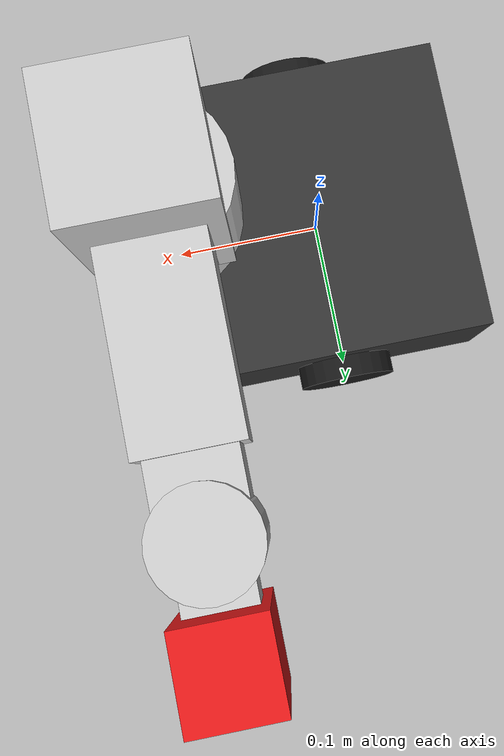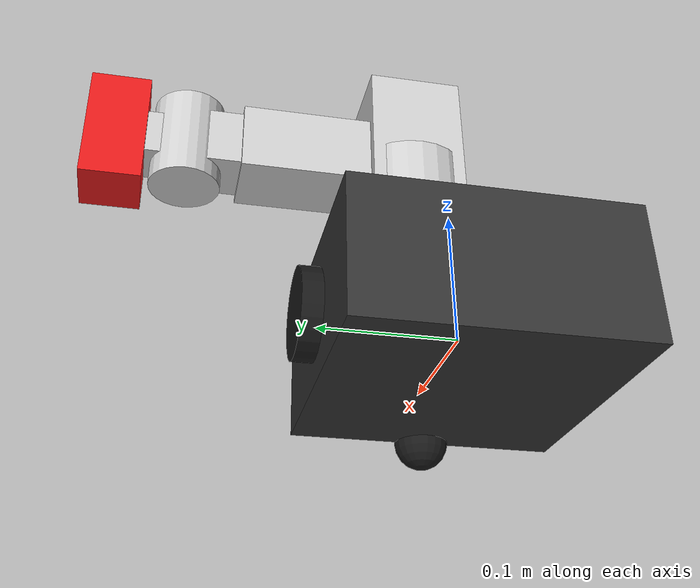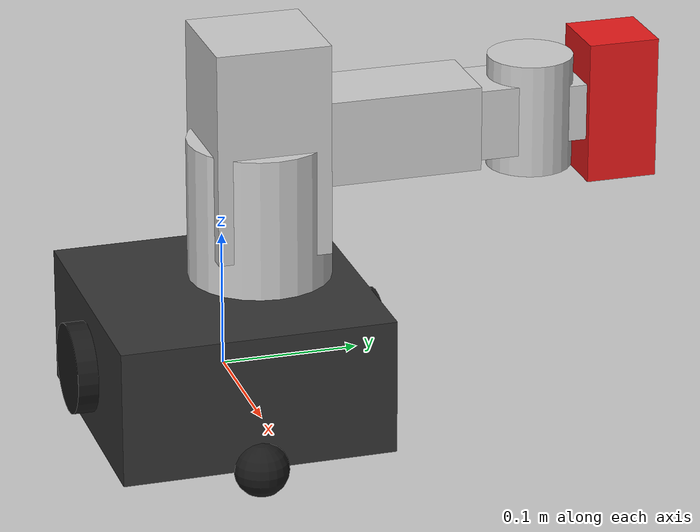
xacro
<?xml version="1.0"?>
<robot xmlns:xacro="http://www.ros.org/wiki/xacro" name="turtlebot_arm">

  <!-- Base link for the robot -->
  <link name="base_footprint"/>

  <joint name="base_footprint_joint" type="fixed">
    <parent link="base_footprint"/>
    <child link="base_link"/>
    <origin xyz="0 0 0.010" rpy="0 0 0"/>
  </joint>

  <!-- Base link -->
  <link name="base_link">
    <visual>
      <geometry>
        <box size="0.2 0.2 0.1"/>
      </geometry>
      <material name="base_material">
        <color rgba="0.2 0.2 0.2 1"/>
      </material>
    </visual>
    <collision>
      <geometry>
        <box size="0.2 0.2 0.1"/>
      </geometry>
    </collision>
    <inertial>
      <mass value="5.0"/>
      <inertia ixx="0.1" ixy="0.0" ixz="0.0" iyy="0.1" iyz="0.0" izz="0.1"/>
    </inertial>
  </link>

  <!-- Left wheel -->
  <link name="left_wheel">
    <visual>
      <geometry>
        <cylinder radius="0.033" length="0.03"/>
      </geometry>
      <material name="wheel_material">
        <color rgba="0.1 0.1 0.1 1"/>
      </material>
    </visual>
    <collision>
      <geometry>
        <cylinder radius="0.033" length="0.03"/>
      </geometry>
    </collision>
    <inertial>
      <mass value="0.5"/>
      <inertia ixx="0.001" ixy="0.0" ixz="0.0" iyy="0.001" iyz="0.0" izz="0.001"/>
    </inertial>
  </link>

  <joint name="left_wheel_joint" type="continuous">
    <parent link="base_link"/>
    <child link="left_wheel"/>
    <origin xyz="0 0.1 0" rpy="-1.5708 0 0"/>
    <axis xyz="0 1 0"/>
  </joint>

  <!-- Right wheel -->
  <link name="right_wheel">
    <visual>
      <geometry>
        <cylinder radius="0.033" length="0.03"/>
      </geometry>
      <material name="wheel_material">
        <color rgba="0.1 0.1 0.1 1"/>
      </material>
    </visual>
    <collision>
      <geometry>
        <cylinder radius="0.033" length="0.03"/>
      </geometry>
    </collision>
    <inertial>
      <mass value="0.5"/>
      <inertia ixx="0.001" ixy="0.0" ixz="0.0" iyy="0.001" iyz="0.0" izz="0.001"/>
    </inertial>
  </link>

  <joint name="right_wheel_joint" type="continuous">
    <parent link="base_link"/>
    <child link="right_wheel"/>
    <origin xyz="0 -0.1 0" rpy="-1.5708 0 0"/>
    <axis xyz="0 1 0"/>
  </joint>

  <!-- Caster wheel -->
  <link name="caster_wheel">
    <visual>
      <geometry>
        <sphere radius="0.02"/>
      </geometry>
      <material name="wheel_material"/>
    </visual>
    <collision>
      <geometry>
        <sphere radius="0.02"/>
      </geometry>
    </collision>
    <inertial>
      <mass value="0.1"/>
      <inertia ixx="0.0001" ixy="0.0" ixz="0.0" iyy="0.0001" iyz="0.0" izz="0.0001"/>
    </inertial>
  </link>

  <joint name="caster_wheel_joint" type="fixed">
    <parent link="base_link"/>
    <child link="caster_wheel"/>
    <origin xyz="0.1 0 -0.05" rpy="0 0 0"/>
  </joint>

  <!-- Arm base link - attached to top of robot -->
  <link name="arm_base_link">
    <visual>
      <geometry>
        <cylinder radius="0.05" length="0.1"/>
      </geometry>
      <material name="arm_material">
        <color rgba="0.8 0.8 0.8 1"/>
      </material>
    </visual>
    <collision>
      <geometry>
        <cylinder radius="0.05" length="0.1"/>
      </geometry>
    </collision>
    <inertial>
      <mass value="0.5"/>
      <inertia ixx="0.001" ixy="0.0" ixz="0.0" iyy="0.001" iyz="0.0" izz="0.001"/>
    </inertial>
  </link>

  <joint name="arm_base_joint" type="fixed">
    <parent link="base_link"/>
    <child link="arm_base_link"/>
    <origin xyz="0.1 0 0.15" rpy="0 0 0"/>
  </joint>

  <!-- Arm joint 1 - Shoulder pan -->
  <link name="arm_link1">
    <visual>
      <geometry>
        <box size="0.08 0.08 0.15"/>
      </geometry>
      <material name="arm_material"/>
    </visual>
    <collision>
      <geometry>
        <box size="0.08 0.08 0.15"/>
      </geometry>
    </collision>
    <inertial>
      <mass value="0.3"/>
      <inertia ixx="0.001" ixy="0.0" ixz="0.0" iyy="0.001" iyz="0.0" izz="0.001"/>
    </inertial>
  </link>

  <joint name="arm_joint1" type="revolute">
    <parent link="arm_base_link"/>
    <child link="arm_link1"/>
    <origin xyz="0 0 0.05" rpy="0 0 0"/>
    <axis xyz="0 0 1"/>
    <limit lower="-3.14159" upper="3.14159" effort="10" velocity="1.0"/>
  </joint>

  <!-- Arm joint 2 - Shoulder lift -->
  <link name="arm_link2">
    <visual>
      <geometry>
        <box size="0.06 0.15 0.06"/>
      </geometry>
      <material name="arm_material"/>
    </visual>
    <collision>
      <geometry>
        <box size="0.06 0.15 0.06"/>
      </geometry>
    </collision>
    <inertial>
      <mass value="0.25"/>
      <inertia ixx="0.001" ixy="0.0" ixz="0.0" iyy="0.001" iyz="0.0" izz="0.001"/>
    </inertial>
  </link>

  <joint name="arm_joint2" type="revolute">
    <parent link="arm_link1"/>
    <child link="arm_link2"/>
    <origin xyz="0 0.075 0" rpy="0 0 0"/>
    <axis xyz="0 1 0"/>
    <limit lower="-1.57" upper="1.57" effort="10" velocity="1.0"/>
  </joint>

  <!-- Arm joint 3 - Elbow -->
  <link name="arm_link3">
    <visual>
      <geometry>
        <box size="0.05 0.12 0.05"/>
      </geometry>
      <material name="arm_material"/>
    </visual>
    <collision>
      <geometry>
        <box size="0.05 0.12 0.05"/>
      </geometry>
    </collision>
    <inertial>
      <mass value="0.2"/>
      <inertia ixx="0.001" ixy="0.0" ixz="0.0" iyy="0.001" iyz="0.0" izz="0.001"/>
    </inertial>
  </link>

  <joint name="arm_joint3" type="revolute">
    <parent link="arm_link2"/>
    <child link="arm_link3"/>
    <origin xyz="0 0.06 0" rpy="0 0 0"/>
    <axis xyz="0 1 0"/>
    <limit lower="-2.0" upper="2.0" effort="8" velocity="1.0"/>
  </joint>

  <!-- Arm joint 4 - Wrist roll -->
  <link name="arm_link4">
    <visual>
      <geometry>
        <cylinder radius="0.03" length="0.08"/>
      </geometry>
      <material name="arm_material"/>
    </visual>
    <collision>
      <geometry>
        <cylinder radius="0.03" length="0.08"/>
      </geometry>
    </collision>
    <inertial>
      <mass value="0.15"/>
      <inertia ixx="0.0005" ixy="0.0" ixz="0.0" iyy="0.0005" iyz="0.0" izz="0.0005"/>
    </inertial>
  </link>

  <joint name="arm_joint4" type="revolute">
    <parent link="arm_link3"/>
    <child link="arm_link4"/>
    <origin xyz="0 0.06 0" rpy="0 0 0"/>
    <axis xyz="0 0 1"/>
    <limit lower="-3.14159" upper="3.14159" effort="5" velocity="1.5"/>
  </joint>

  <!-- Arm joint 5 - Wrist pitch -->
  <link name="arm_link5">
    <visual>
      <geometry>
        <box size="0.04 0.06 0.04"/>
      </geometry>
      <material name="arm_material"/>
    </visual>
    <collision>
      <geometry>
        <box size="0.04 0.06 0.04"/>
      </geometry>
    </collision>
    <inertial>
      <mass value="0.1"/>
      <inertia ixx="0.0001" ixy="0.0" ixz="0.0" iyy="0.0001" iyz="0.0" izz="0.0001"/>
    </inertial>
  </link>

  <joint name="arm_joint5" type="revolute">
    <parent link="arm_link4"/>
    <child link="arm_link5"/>
    <origin xyz="0 0.03 0" rpy="0 0 0"/>
    <axis xyz="0 1 0"/>
    <limit lower="-1.57" upper="1.57" effort="5" velocity="1.5"/>
  </joint>

  <!-- End effector - Gripper/Sampler -->
  <link name="end_effector_link">
    <visual>
      <geometry>
        <box size="0.05 0.05 0.1"/>
      </geometry>
      <material name="gripper_material">
        <color rgba="0.9 0.1 0.1 1"/>
      </material>
    </visual>
    <collision>
      <geometry>
        <box size="0.05 0.05 0.1"/>
      </geometry>
    </collision>
    <inertial>
      <mass value="0.2"/>
      <inertia ixx="0.0001" ixy="0.0" ixz="0.0" iyy="0.0001" iyz="0.0" izz="0.0001"/>
    </inertial>
  </link>

  <joint name="end_effector_joint" type="fixed">
    <parent link="arm_link5"/>
    <child link="end_effector_link"/>
    <origin xyz="0 0.03 0" rpy="0 0 0"/>
  </joint>

  <!-- Gazebo plugins for ros2_control -->
  <!-- Note: ros2_control plugin will be added when controllers are configured -->
  <!-- For now, commented out to avoid plugin loading errors -->

  <!-- Material definitions for Gazebo -->
  <gazebo reference="base_link">
    <material>Gazebo/Grey</material>
  </gazebo>

  <gazebo reference="arm_base_link">
    <material>Gazebo/Silver</material>
  </gazebo>

  <gazebo reference="arm_link1">
    <material>Gazebo/Silver</material>
  </gazebo>

  <gazebo reference="arm_link2">
    <material>Gazebo/Silver</material>
  </gazebo>

  <gazebo reference="arm_link3">
    <material>Gazebo/Silver</material>
  </gazebo>

  <gazebo reference="arm_link4">
    <material>Gazebo/Silver</material>
  </gazebo>

  <gazebo reference="arm_link5">
    <material>Gazebo/Silver</material>
  </gazebo>

  <gazebo reference="end_effector_link">
    <material>Gazebo/Red</material>
  </gazebo>

</robot>
